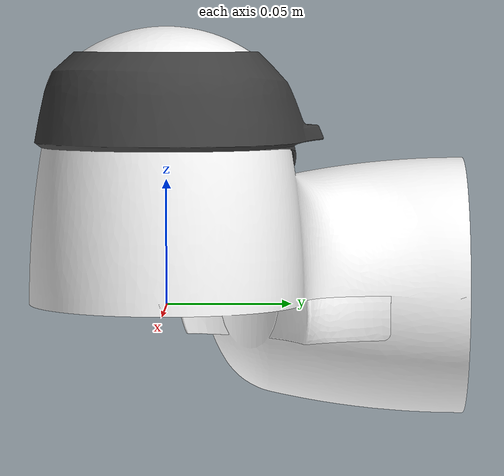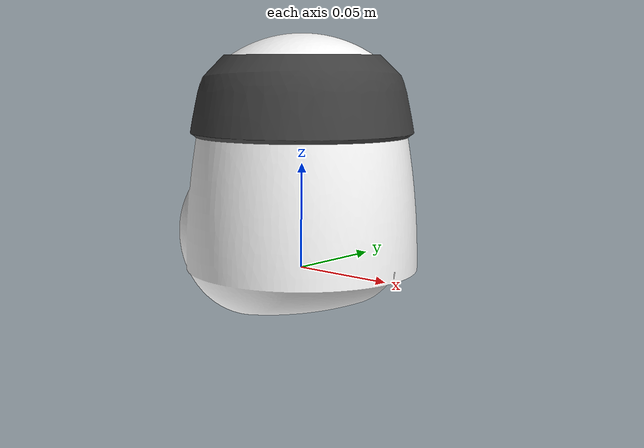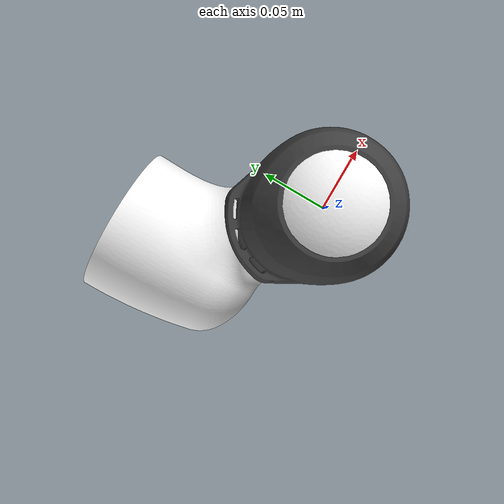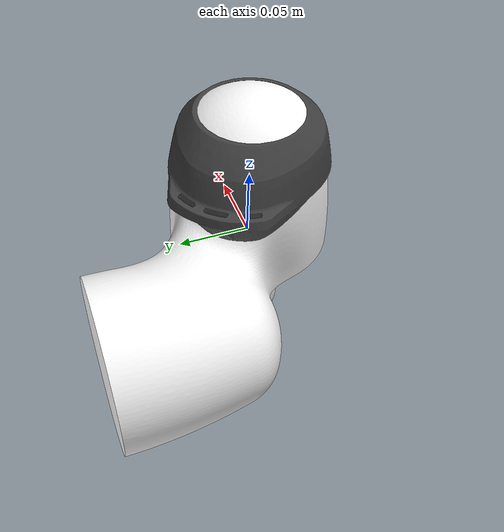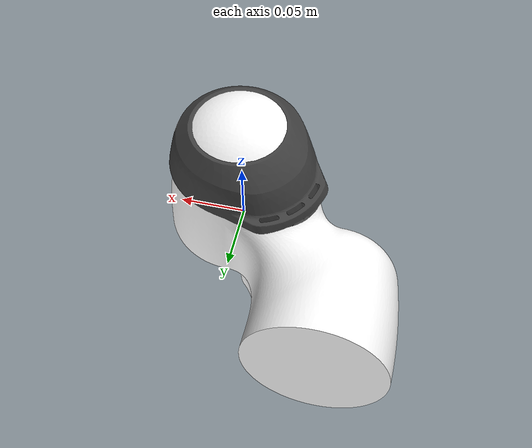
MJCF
<mujoco model="link4_vis">
  <default>
    <default class="visual">
      <geom group="2" type="mesh" contype="0" conaffinity="0"/>
    </default>
    <default class="collision">
      <geom group="3" type="mesh"/>
    </default>
  </default>
  <asset>
    <material name="Part__Feature001_001_003_001" specular="0.5" shininess="0.225" rgba="1.000000 1.000000 1.000000 1.000000"/>
    <material name="Part__Feature002_001_003_001" specular="0.5" shininess="0.225" rgba="0.250980 0.250980 0.250980 1.000000"/>
    <material name="Part__Feature003_001_003_001" specular="0.5" shininess="0.225" rgba="1.000000 1.000000 1.000000 1.000000"/>
    <material name="Part__Feature_002_003_001" specular="0.5" shininess="0.225" rgba="1.000000 1.000000 1.000000 1.000000"/>
    <mesh file="link4_vis_0.obj"/>
    <mesh file="link4_vis_1.obj"/>
    <mesh file="link4_vis_2.obj"/>
    <mesh file="link4_vis_3.obj"/>
  </asset>
  <worldbody>
    <body name="link4_vis">
      <geom mesh="link4_vis_0" material="Part__Feature001_001_003_001" class="visual"/>
      <geom mesh="link4_vis_1" material="Part__Feature003_001_003_001" class="visual"/>
      <geom mesh="link4_vis_2" material="Part__Feature002_001_003_001" class="visual"/>
      <geom mesh="link4_vis_3" material="Part__Feature_002_003_001" class="visual"/>
      <geom mesh="link4_vis_0" class="collision"/>
      <geom mesh="link4_vis_1" class="collision"/>
      <geom mesh="link4_vis_2" class="collision"/>
      <geom mesh="link4_vis_3" class="collision"/>
    </body>
  </worldbody>
</mujoco>
